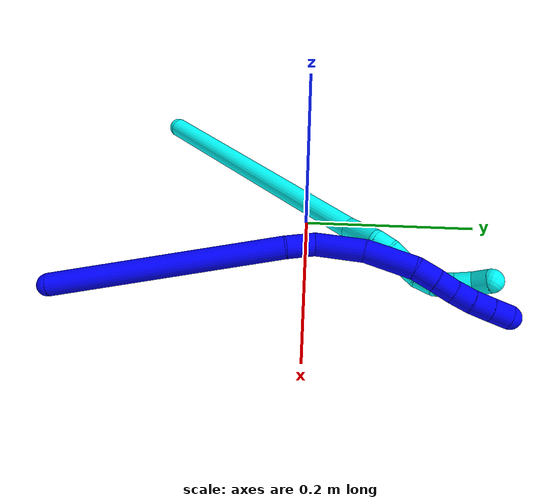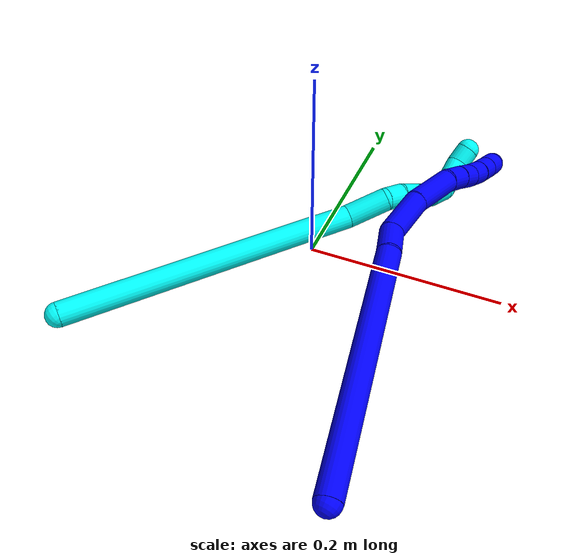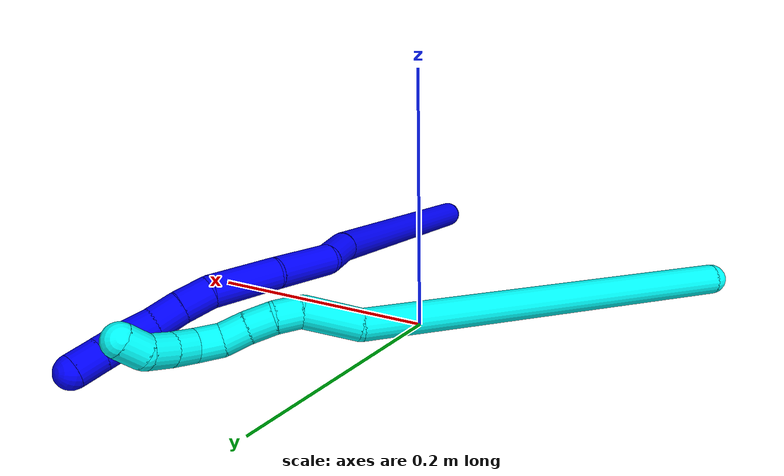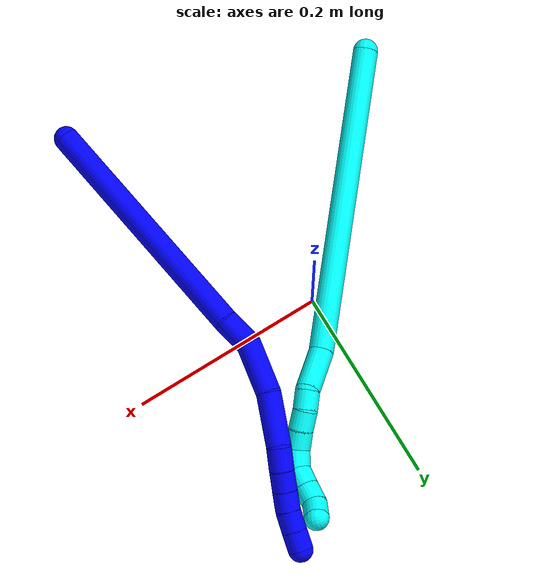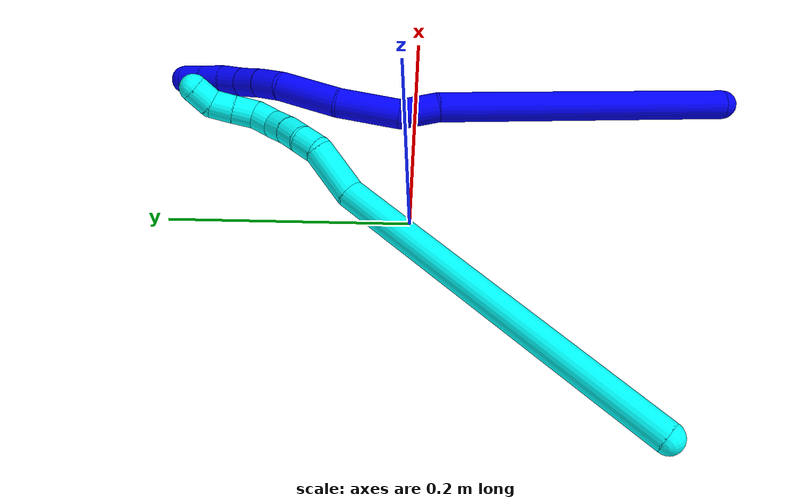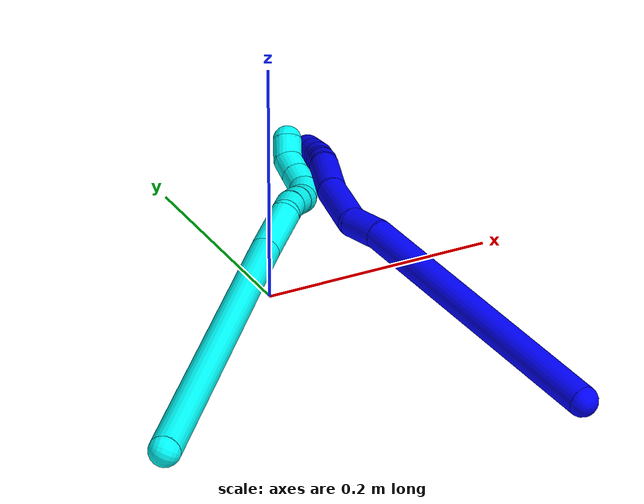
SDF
<sdf version="1.7">
 <world name="default">
  <model name="1">
   <static>0</static>
   <link name="1">
    <collision name="collision-cylinder-e_1_1_4">
     <pose>0.031625 0.015489 -0.1225 -3.01582 0.250737 -2.21485</pose>
     <geometry><cylinder><radius>0.0125</radius><length>0.254921</length></cylinder></geometry>
     <surface>
      <friction><ode><mu>1.16</mu><mu2>1.16</mu2><slip1>0</slip1><slip2>0</slip2></ode></friction>
      <contact><ode><kp>1e+06</kp><kd>1</kd><max_vel>0</max_vel><min_depth>0.001</min_depth></ode></contact>
     </surface>
    </collision>
    <visual name="visual-cylinder-e_1_1_4">
     <pose>0.031625 0.015489 -0.1225 -3.01582 0.250737 -2.21485</pose>
     <geometry><cylinder><radius>0.0125</radius><length>0.254921</length></cylinder></geometry>
     <material><ambient>0 0 1 1</ambient></material>
    </visual>
    <collision name="collision-cylinder-e_2_4_5">
     <pose>0.068498 0.035458 -0.259539 -2.84273 0.332111 -1.67785</pose>
     <geometry><cylinder><radius>0.0125</radius><length>0.032188</length></cylinder></geometry>
     <surface>
      <friction><ode><mu>1.16</mu><mu2>1.16</mu2><slip1>0</slip1><slip2>0</slip2></ode></friction>
      <contact><ode><kp>1e+06</kp><kd>1</kd><max_vel>0</max_vel><min_depth>0.001</min_depth></ode></contact>
     </surface>
    </collision>
    <visual name="visual-cylinder-e_2_4_5">
     <pose>0.068498 0.035458 -0.259539 -2.84273 0.332111 -1.67785</pose>
     <geometry><cylinder><radius>0.0125</radius><length>0.032188</length></cylinder></geometry>
     <material><ambient>0 0 1 1</ambient></material>
    </visual>
    <collision name="collision-cylinder-e_3_5_6">
     <pose>0.071934 0.045473 -0.300233 -2.93302 -0.067634 0.625237</pose>
     <geometry><cylinder><radius>0.0125</radius><length>0.053588</length></cylinder></geometry>
     <surface>
      <friction><ode><mu>1.16</mu><mu2>1.16</mu2><slip1>0</slip1><slip2>0</slip2></ode></friction>
      <contact><ode><kp>1e+06</kp><kd>1</kd><max_vel>0</max_vel><min_depth>0.001</min_depth></ode></contact>
     </surface>
    </collision>
    <visual name="visual-cylinder-e_3_5_6">
     <pose>0.071934 0.045473 -0.300233 -2.93302 -0.067634 0.625237</pose>
     <geometry><cylinder><radius>0.0125</radius><length>0.053588</length></cylinder></geometry>
     <material><ambient>0 0 1 1</ambient></material>
    </visual>
    <collision name="collision-cylinder-e_4_6_7">
     <pose>0.063132 0.058644 -0.351313 -2.84435 -0.262006 1.44331</pose>
     <geometry><cylinder><radius>0.0125</radius><length>0.053982</length></cylinder></geometry>
     <surface>
      <friction><ode><mu>1.16</mu><mu2>1.16</mu2><slip1>0</slip1><slip2>0</slip2></ode></friction>
      <contact><ode><kp>1e+06</kp><kd>1</kd><max_vel>0</max_vel><min_depth>0.001</min_depth></ode></contact>
     </surface>
    </collision>
    <visual name="visual-cylinder-e_4_6_7">
     <pose>0.063132 0.058644 -0.351313 -2.84435 -0.262006 1.44331</pose>
     <geometry><cylinder><radius>0.0125</radius><length>0.053982</length></cylinder></geometry>
     <material><ambient>0 0 1 1</ambient></material>
    </visual>
    <collision name="collision-cylinder-e_5_7_8">
     <pose>0.052528 0.072198 -0.385703 -2.58275 -0.313078 1.00579</pose>
     <geometry><cylinder><radius>0.0125</radius><length>0.023465</length></cylinder></geometry>
     <surface>
      <friction><ode><mu>1.16</mu><mu2>1.16</mu2><slip1>0</slip1><slip2>0</slip2></ode></friction>
      <contact><ode><kp>1e+06</kp><kd>1</kd><max_vel>0</max_vel><min_depth>0.001</min_depth></ode></contact>
     </surface>
    </collision>
    <visual name="visual-cylinder-e_5_7_8">
     <pose>0.052528 0.072198 -0.385703 -2.58275 -0.313078 1.00579</pose>
     <geometry><cylinder><radius>0.0125</radius><length>0.023465</length></cylinder></geometry>
     <material><ambient>0 0 1 1</ambient></material>
    </visual>
    <collision name="collision-cylinder-e_6_8_9">
     <pose>0.046006 0.084142 -0.403225 -2.49945 -0.281363 0.805122</pose>
     <geometry><cylinder><radius>0.0125</radius><length>0.020947</length></cylinder></geometry>
     <surface>
      <friction><ode><mu>1.16</mu><mu2>1.16</mu2><slip1>0</slip1><slip2>0</slip2></ode></friction>
      <contact><ode><kp>1e+06</kp><kd>1</kd><max_vel>0</max_vel><min_depth>0.001</min_depth></ode></contact>
     </surface>
    </collision>
    <visual name="visual-cylinder-e_6_8_9">
     <pose>0.046006 0.084142 -0.403225 -2.49945 -0.281363 0.805122</pose>
     <geometry><cylinder><radius>0.0125</radius><length>0.020947</length></cylinder></geometry>
     <material><ambient>0 0 1 1</ambient></material>
    </visual>
    <collision name="collision-cylinder-e_7_9_10">
     <pose>0.040333 0.095048 -0.4196 -2.61108 -0.279253 0.954852</pose>
     <geometry><cylinder><radius>0.0125</radius><length>0.020064</length></cylinder></geometry>
     <surface>
      <friction><ode><mu>1.16</mu><mu2>1.16</mu2><slip1>0</slip1><slip2>0</slip2></ode></friction>
      <contact><ode><kp>1e+06</kp><kd>1</kd><max_vel>0</max_vel><min_depth>0.001</min_depth></ode></contact>
     </surface>
    </collision>
    <visual name="visual-cylinder-e_7_9_10">
     <pose>0.040333 0.095048 -0.4196 -2.61108 -0.279253 0.954852</pose>
     <geometry><cylinder><radius>0.0125</radius><length>0.020064</length></cylinder></geometry>
     <material><ambient>0 0 1 1</ambient></material>
    </visual>
    <collision name="collision-cylinder-e_8_10_11">
     <pose>0.036125 0.105163 -0.436769 -2.60737 -0.139389 0.49954</pose>
     <geometry><cylinder><radius>0.0125</radius><length>0.02077</length></cylinder></geometry>
     <surface>
      <friction><ode><mu>1.16</mu><mu2>1.16</mu2><slip1>0</slip1><slip2>0</slip2></ode></friction>
      <contact><ode><kp>1e+06</kp><kd>1</kd><max_vel>0</max_vel><min_depth>0.001</min_depth></ode></contact>
     </surface>
    </collision>
    <visual name="visual-cylinder-e_8_10_11">
     <pose>0.036125 0.105163 -0.436769 -2.60737 -0.139389 0.49954</pose>
     <geometry><cylinder><radius>0.0125</radius><length>0.02077</length></cylinder></geometry>
     <material><ambient>0 0 1 1</ambient></material>
    </visual>
    <collision name="collision-cylinder-e_9_11_2">
     <pose>0.0335 0.115397 -0.454245 -2.61645 -0.118012 0.432704</pose>
     <geometry><cylinder><radius>0.0125</radius><length>0.020075</length></cylinder></geometry>
     <surface>
      <friction><ode><mu>1.16</mu><mu2>1.16</mu2><slip1>0</slip1><slip2>0</slip2></ode></friction>
      <contact><ode><kp>1e+06</kp><kd>1</kd><max_vel>0</max_vel><min_depth>0.001</min_depth></ode></contact>
     </surface>
    </collision>
    <visual name="visual-cylinder-e_9_11_2">
     <pose>0.0335 0.115397 -0.454245 -2.61645 -0.118012 0.432704</pose>
     <geometry><cylinder><radius>0.0125</radius><length>0.020075</length></cylinder></geometry>
     <material><ambient>0 0 1 1</ambient></material>
    </visual>
    <collision name="collision-sphere-2">
     <pose>0.032318 0.120394 -0.46287 0 -0 0</pose>
     <geometry><sphere><radius>0.0125</radius></sphere></geometry>
     <surface>
      <friction><ode><mu>1.16</mu><mu2>1.16</mu2><slip1>0</slip1><slip2>0</slip2></ode></friction>
      <contact><ode><kp>1e+06</kp><kd>1</kd><max_vel>0</max_vel><min_depth>0.001</min_depth></ode></contact>
     </surface>
    </collision>
    <visual name="visual-sphere-2">
     <pose>0.032318 0.120394 -0.46287 0 -0 0</pose>
     <geometry><sphere><radius>0.0125</radius></sphere></geometry>
     <material><ambient>0 0 1 1</ambient></material>
    </visual>
    <collision name="collision-sphere-11">
     <pose>0.034682 0.1104 -0.445621 0 -0 0</pose>
     <geometry><sphere><radius>0.0125</radius></sphere></geometry>
     <surface>
      <friction><ode><mu>1.16</mu><mu2>1.16</mu2><slip1>0</slip1><slip2>0</slip2></ode></friction>
      <contact><ode><kp>1e+06</kp><kd>1</kd><max_vel>0</max_vel><min_depth>0.001</min_depth></ode></contact>
     </surface>
    </collision>
    <visual name="visual-sphere-11">
     <pose>0.034682 0.1104 -0.445621 0 -0 0</pose>
     <geometry><sphere><radius>0.0125</radius></sphere></geometry>
     <material><ambient>0 0 1 1</ambient></material>
    </visual>
    <collision name="collision-sphere-10">
     <pose>0.037568 0.099927 -0.427918 0 -0 0</pose>
     <geometry><sphere><radius>0.0125</radius></sphere></geometry>
     <surface>
      <friction><ode><mu>1.16</mu><mu2>1.16</mu2><slip1>0</slip1><slip2>0</slip2></ode></friction>
      <contact><ode><kp>1e+06</kp><kd>1</kd><max_vel>0</max_vel><min_depth>0.001</min_depth></ode></contact>
     </surface>
    </collision>
    <visual name="visual-sphere-10">
     <pose>0.037568 0.099927 -0.427918 0 -0 0</pose>
     <geometry><sphere><radius>0.0125</radius></sphere></geometry>
     <material><ambient>0 0 1 1</ambient></material>
    </visual>
    <collision name="collision-sphere-9">
     <pose>0.043098 0.090168 -0.411283 0 -0 0</pose>
     <geometry><sphere><radius>0.0125</radius></sphere></geometry>
     <surface>
      <friction><ode><mu>1.16</mu><mu2>1.16</mu2><slip1>0</slip1><slip2>0</slip2></ode></friction>
      <contact><ode><kp>1e+06</kp><kd>1</kd><max_vel>0</max_vel><min_depth>0.001</min_depth></ode></contact>
     </surface>
    </collision>
    <visual name="visual-sphere-9">
     <pose>0.043098 0.090168 -0.411283 0 -0 0</pose>
     <geometry><sphere><radius>0.0125</radius></sphere></geometry>
     <material><ambient>0 0 1 1</ambient></material>
    </visual>
    <collision name="collision-sphere-4">
     <pose>0.063251 0.030979 -0.244999 0 -0 0</pose>
     <geometry><sphere><radius>0.0125</radius></sphere></geometry>
     <surface>
      <friction><ode><mu>1.16</mu><mu2>1.16</mu2><slip1>0</slip1><slip2>0</slip2></ode></friction>
      <contact><ode><kp>1e+06</kp><kd>1</kd><max_vel>0</max_vel><min_depth>0.001</min_depth></ode></contact>
     </surface>
    </collision>
    <visual name="visual-sphere-4">
     <pose>0.063251 0.030979 -0.244999 0 -0 0</pose>
     <geometry><sphere><radius>0.0125</radius></sphere></geometry>
     <material><ambient>0 0 1 1</ambient></material>
    </visual>
    <collision name="collision-sphere-1">
     <geometry><sphere><radius>0.0125</radius></sphere></geometry>
     <surface>
      <friction><ode><mu>1.16</mu><mu2>1.16</mu2><slip1>0</slip1><slip2>0</slip2></ode></friction>
      <contact><ode><kp>1e+06</kp><kd>1</kd><max_vel>0</max_vel><min_depth>0.001</min_depth></ode></contact>
     </surface>
    </collision>
    <visual name="visual-sphere-1">
     <geometry><sphere><radius>0.0125</radius></sphere></geometry>
     <material><ambient>0 0 1 1</ambient></material>
    </visual>
    <collision name="collision-sphere-8">
     <pose>0.048914 0.078116 -0.395167 0 -0 0</pose>
     <geometry><sphere><radius>0.0125</radius></sphere></geometry>
     <surface>
      <friction><ode><mu>1.16</mu><mu2>1.16</mu2><slip1>0</slip1><slip2>0</slip2></ode></friction>
      <contact><ode><kp>1e+06</kp><kd>1</kd><max_vel>0</max_vel><min_depth>0.001</min_depth></ode></contact>
     </surface>
    </collision>
    <visual name="visual-sphere-8">
     <pose>0.048914 0.078116 -0.395167 0 -0 0</pose>
     <geometry><sphere><radius>0.0125</radius></sphere></geometry>
     <material><ambient>0 0 1 1</ambient></material>
    </visual>
    <collision name="collision-sphere-5">
     <pose>0.073745 0.039938 -0.274079 0 -0 0</pose>
     <geometry><sphere><radius>0.0125</radius></sphere></geometry>
     <surface>
      <friction><ode><mu>1.16</mu><mu2>1.16</mu2><slip1>0</slip1><slip2>0</slip2></ode></friction>
      <contact><ode><kp>1e+06</kp><kd>1</kd><max_vel>0</max_vel><min_depth>0.001</min_depth></ode></contact>
     </surface>
    </collision>
    <visual name="visual-sphere-5">
     <pose>0.073745 0.039938 -0.274079 0 -0 0</pose>
     <geometry><sphere><radius>0.0125</radius></sphere></geometry>
     <material><ambient>0 0 1 1</ambient></material>
    </visual>
    <collision name="collision-sphere-6">
     <pose>0.070123 0.051009 -0.326386 0 -0 0</pose>
     <geometry><sphere><radius>0.0125</radius></sphere></geometry>
     <surface>
      <friction><ode><mu>1.16</mu><mu2>1.16</mu2><slip1>0</slip1><slip2>0</slip2></ode></friction>
      <contact><ode><kp>1e+06</kp><kd>1</kd><max_vel>0</max_vel><min_depth>0.001</min_depth></ode></contact>
     </surface>
    </collision>
    <visual name="visual-sphere-6">
     <pose>0.070123 0.051009 -0.326386 0 -0 0</pose>
     <geometry><sphere><radius>0.0125</radius></sphere></geometry>
     <material><ambient>0 0 1 1</ambient></material>
    </visual>
    <collision name="collision-sphere-7">
     <pose>0.056141 0.06628 -0.376239 0 -0 0</pose>
     <geometry><sphere><radius>0.0125</radius></sphere></geometry>
     <surface>
      <friction><ode><mu>1.16</mu><mu2>1.16</mu2><slip1>0</slip1><slip2>0</slip2></ode></friction>
      <contact><ode><kp>1e+06</kp><kd>1</kd><max_vel>0</max_vel><min_depth>0.001</min_depth></ode></contact>
     </surface>
    </collision>
    <visual name="visual-sphere-7">
     <pose>0.056141 0.06628 -0.376239 0 -0 0</pose>
     <geometry><sphere><radius>0.0125</radius></sphere></geometry>
     <material><ambient>0 0 1 1</ambient></material>
    </visual>
    <inertial>
     <pose>0.043916 0.041114 -0.237483 0 -0 0</pose>
     <mass>0.5</mass>
     <inertia>
      <ixx>-0.00184</ixx>
      <ixy>0</ixy>
      <ixz>0</ixz>
      <iyy>-0.000196</iyy>
      <iyz>0</iyz>
      <izz>-0.000557</izz>
     </inertia>
    </inertial>
   </link>
   <pose>0.1244 -0.271326 0.012033 -1.82281 -0.02958 3.03679</pose>
  </model>
  <model name="3">
   <static>0</static>
   <link name="3">
    <collision name="collision-cylinder-e_1_1_4">
     <pose>0.140608 0.062931 0.030654 -1.11752 1.10888 -0.738775</pose>
     <geometry><cylinder><radius>0.0125</radius><length>0.314137</length></cylinder></geometry>
     <surface>
      <friction><ode><mu>1.16</mu><mu2>1.16</mu2><slip1>0</slip1><slip2>0</slip2></ode></friction>
      <contact><ode><kp>1e+06</kp><kd>1</kd><max_vel>0</max_vel><min_depth>0.001</min_depth></ode></contact>
     </surface>
    </collision>
    <visual name="visual-cylinder-e_1_1_4">
     <pose>0.140608 0.062931 0.030654 -1.11752 1.10888 -0.738775</pose>
     <geometry><cylinder><radius>0.0125</radius><length>0.314137</length></cylinder></geometry>
     <material><ambient>0.003922 1 0.996078 1</ambient></material>
    </visual>
    <collision name="collision-cylinder-e_2_4_5">
     <pose>0.297184 0.141521 0.065842 -1.2889 0.77511 -0.595285</pose>
     <geometry><cylinder><radius>0.0125</radius><length>0.04564</length></cylinder></geometry>
     <surface>
      <friction><ode><mu>1.16</mu><mu2>1.16</mu2><slip1>0</slip1><slip2>0</slip2></ode></friction>
      <contact><ode><kp>1e+06</kp><kd>1</kd><max_vel>0</max_vel><min_depth>0.001</min_depth></ode></contact>
     </surface>
    </collision>
    <visual name="visual-cylinder-e_2_4_5">
     <pose>0.297184 0.141521 0.065842 -1.2889 0.77511 -0.595285</pose>
     <geometry><cylinder><radius>0.0125</radius><length>0.04564</length></cylinder></geometry>
     <material><ambient>0.003922 1 0.996078 1</ambient></material>
    </visual>
    <collision name="collision-cylinder-e_3_5_6">
     <pose>0.322481 0.160302 0.072556 -0.96173 1.18314 -0.674244</pose>
     <geometry><cylinder><radius>0.0125</radius><length>0.02015</length></cylinder></geometry>
     <surface>
      <friction><ode><mu>1.16</mu><mu2>1.16</mu2><slip1>0</slip1><slip2>0</slip2></ode></friction>
      <contact><ode><kp>1e+06</kp><kd>1</kd><max_vel>0</max_vel><min_depth>0.001</min_depth></ode></contact>
     </surface>
    </collision>
    <visual name="visual-cylinder-e_3_5_6">
     <pose>0.322481 0.160302 0.072556 -0.96173 1.18314 -0.674244</pose>
     <geometry><cylinder><radius>0.0125</radius><length>0.02015</length></cylinder></geometry>
     <material><ambient>0.003922 1 0.996078 1</ambient></material>
    </visual>
    <collision name="collision-cylinder-e_4_6_7">
     <pose>0.340935 0.165068 0.078543 -0.407027 1.14429 -0.264255</pose>
     <geometry><cylinder><radius>0.0125</radius><length>0.020049</length></cylinder></geometry>
     <surface>
      <friction><ode><mu>1.16</mu><mu2>1.16</mu2><slip1>0</slip1><slip2>0</slip2></ode></friction>
      <contact><ode><kp>1e+06</kp><kd>1</kd><max_vel>0</max_vel><min_depth>0.001</min_depth></ode></contact>
     </surface>
    </collision>
    <visual name="visual-cylinder-e_4_6_7">
     <pose>0.340935 0.165068 0.078543 -0.407027 1.14429 -0.264255</pose>
     <geometry><cylinder><radius>0.0125</radius><length>0.020049</length></cylinder></geometry>
     <material><ambient>0.003922 1 0.996078 1</ambient></material>
    </visual>
    <collision name="collision-cylinder-e_5_7_8">
     <pose>0.359439 0.167441 0.085772 -0.210659 1.21372 -0.146531</pose>
     <geometry><cylinder><radius>0.0125</radius><length>0.020017</length></cylinder></geometry>
     <surface>
      <friction><ode><mu>1.16</mu><mu2>1.16</mu2><slip1>0</slip1><slip2>0</slip2></ode></friction>
      <contact><ode><kp>1e+06</kp><kd>1</kd><max_vel>0</max_vel><min_depth>0.001</min_depth></ode></contact>
     </surface>
    </collision>
    <visual name="visual-cylinder-e_5_7_8">
     <pose>0.359439 0.167441 0.085772 -0.210659 1.21372 -0.146531</pose>
     <geometry><cylinder><radius>0.0125</radius><length>0.020017</length></cylinder></geometry>
     <material><ambient>0.003922 1 0.996078 1</ambient></material>
    </visual>
    <collision name="collision-cylinder-e_6_8_9">
     <pose>0.378236 0.171466 0.089876 -1.36638 1.22789 -1.04168</pose>
     <geometry><cylinder><radius>0.0125</radius><length>0.020005</length></cylinder></geometry>
     <surface>
      <friction><ode><mu>1.16</mu><mu2>1.16</mu2><slip1>0</slip1><slip2>0</slip2></ode></friction>
      <contact><ode><kp>1e+06</kp><kd>1</kd><max_vel>0</max_vel><min_depth>0.001</min_depth></ode></contact>
     </surface>
    </collision>
    <visual name="visual-cylinder-e_6_8_9">
     <pose>0.378236 0.171466 0.089876 -1.36638 1.22789 -1.04168</pose>
     <geometry><cylinder><radius>0.0125</radius><length>0.020005</length></cylinder></geometry>
     <material><ambient>0.003922 1 0.996078 1</ambient></material>
    </visual>
    <collision name="collision-cylinder-e_7_9_10">
     <pose>0.396299 0.177909 0.086635 -2.4651 1.04357 -2.04345</pose>
     <geometry><cylinder><radius>0.0125</radius><length>0.020002</length></cylinder></geometry>
     <surface>
      <friction><ode><mu>1.16</mu><mu2>1.16</mu2><slip1>0</slip1><slip2>0</slip2></ode></friction>
      <contact><ode><kp>1e+06</kp><kd>1</kd><max_vel>0</max_vel><min_depth>0.001</min_depth></ode></contact>
     </surface>
    </collision>
    <visual name="visual-cylinder-e_7_9_10">
     <pose>0.396299 0.177909 0.086635 -2.4651 1.04357 -2.04345</pose>
     <geometry><cylinder><radius>0.0125</radius><length>0.020002</length></cylinder></geometry>
     <material><ambient>0.003922 1 0.996078 1</ambient></material>
    </visual>
    <collision name="collision-cylinder-e_8_10_11">
     <pose>0.4132 0.184667 0.078376 -2.44742 0.971585 -1.94028</pose>
     <geometry><cylinder><radius>0.0125</radius><length>0.02</length></cylinder></geometry>
     <surface>
      <friction><ode><mu>1.16</mu><mu2>1.16</mu2><slip1>0</slip1><slip2>0</slip2></ode></friction>
      <contact><ode><kp>1e+06</kp><kd>1</kd><max_vel>0</max_vel><min_depth>0.001</min_depth></ode></contact>
     </surface>
    </collision>
    <visual name="visual-cylinder-e_8_10_11">
     <pose>0.4132 0.184667 0.078376 -2.44742 0.971585 -1.94028</pose>
     <geometry><cylinder><radius>0.0125</radius><length>0.02</length></cylinder></geometry>
     <material><ambient>0.003922 1 0.996078 1</ambient></material>
    </visual>
    <collision name="collision-cylinder-e_9_11_2">
     <pose>0.427156 0.19595 0.071104 -1.93631 0.606362 -0.853466</pose>
     <geometry><cylinder><radius>0.0125</radius><length>0.02</length></cylinder></geometry>
     <surface>
      <friction><ode><mu>1.16</mu><mu2>1.16</mu2><slip1>0</slip1><slip2>0</slip2></ode></friction>
      <contact><ode><kp>1e+06</kp><kd>1</kd><max_vel>0</max_vel><min_depth>0.001</min_depth></ode></contact>
     </surface>
    </collision>
    <visual name="visual-cylinder-e_9_11_2">
     <pose>0.427156 0.19595 0.071104 -1.93631 0.606362 -0.853466</pose>
     <geometry><cylinder><radius>0.0125</radius><length>0.02</length></cylinder></geometry>
     <material><ambient>0.003922 1 0.996078 1</ambient></material>
    </visual>
    <collision name="collision-sphere-2">
     <pose>0.432855 0.203624 0.068167 0 -0 0</pose>
     <geometry><sphere><radius>0.0125</radius></sphere></geometry>
     <surface>
      <friction><ode><mu>1.16</mu><mu2>1.16</mu2><slip1>0</slip1><slip2>0</slip2></ode></friction>
      <contact><ode><kp>1e+06</kp><kd>1</kd><max_vel>0</max_vel><min_depth>0.001</min_depth></ode></contact>
     </surface>
    </collision>
    <visual name="visual-sphere-2">
     <pose>0.432855 0.203624 0.068167 0 -0 0</pose>
     <geometry><sphere><radius>0.0125</radius></sphere></geometry>
     <material><ambient>0.003922 1 0.996078 1</ambient></material>
    </visual>
    <collision name="collision-sphere-11">
     <pose>0.421458 0.188275 0.074042 0 -0 0</pose>
     <geometry><sphere><radius>0.0125</radius></sphere></geometry>
     <surface>
      <friction><ode><mu>1.16</mu><mu2>1.16</mu2><slip1>0</slip1><slip2>0</slip2></ode></friction>
      <contact><ode><kp>1e+06</kp><kd>1</kd><max_vel>0</max_vel><min_depth>0.001</min_depth></ode></contact>
     </surface>
    </collision>
    <visual name="visual-sphere-11">
     <pose>0.421458 0.188275 0.074042 0 -0 0</pose>
     <geometry><sphere><radius>0.0125</radius></sphere></geometry>
     <material><ambient>0.003922 1 0.996078 1</ambient></material>
    </visual>
    <collision name="collision-sphere-10">
     <pose>0.404942 0.181059 0.082711 0 -0 0</pose>
     <geometry><sphere><radius>0.0125</radius></sphere></geometry>
     <surface>
      <friction><ode><mu>1.16</mu><mu2>1.16</mu2><slip1>0</slip1><slip2>0</slip2></ode></friction>
      <contact><ode><kp>1e+06</kp><kd>1</kd><max_vel>0</max_vel><min_depth>0.001</min_depth></ode></contact>
     </surface>
    </collision>
    <visual name="visual-sphere-10">
     <pose>0.404942 0.181059 0.082711 0 -0 0</pose>
     <geometry><sphere><radius>0.0125</radius></sphere></geometry>
     <material><ambient>0.003922 1 0.996078 1</ambient></material>
    </visual>
    <collision name="collision-sphere-9">
     <pose>0.387656 0.174759 0.090559 0 -0 0</pose>
     <geometry><sphere><radius>0.0125</radius></sphere></geometry>
     <surface>
      <friction><ode><mu>1.16</mu><mu2>1.16</mu2><slip1>0</slip1><slip2>0</slip2></ode></friction>
      <contact><ode><kp>1e+06</kp><kd>1</kd><max_vel>0</max_vel><min_depth>0.001</min_depth></ode></contact>
     </surface>
    </collision>
    <visual name="visual-sphere-9">
     <pose>0.387656 0.174759 0.090559 0 -0 0</pose>
     <geometry><sphere><radius>0.0125</radius></sphere></geometry>
     <material><ambient>0.003922 1 0.996078 1</ambient></material>
    </visual>
    <collision name="collision-sphere-4">
     <pose>0.281215 0.125863 0.061307 0 -0 0</pose>
     <geometry><sphere><radius>0.0125</radius></sphere></geometry>
     <surface>
      <friction><ode><mu>1.16</mu><mu2>1.16</mu2><slip1>0</slip1><slip2>0</slip2></ode></friction>
      <contact><ode><kp>1e+06</kp><kd>1</kd><max_vel>0</max_vel><min_depth>0.001</min_depth></ode></contact>
     </surface>
    </collision>
    <visual name="visual-sphere-4">
     <pose>0.281215 0.125863 0.061307 0 -0 0</pose>
     <geometry><sphere><radius>0.0125</radius></sphere></geometry>
     <material><ambient>0.003922 1 0.996078 1</ambient></material>
    </visual>
    <collision name="collision-sphere-1">
     <geometry><sphere><radius>0.0125</radius></sphere></geometry>
     <surface>
      <friction><ode><mu>1.16</mu><mu2>1.16</mu2><slip1>0</slip1><slip2>0</slip2></ode></friction>
      <contact><ode><kp>1e+06</kp><kd>1</kd><max_vel>0</max_vel><min_depth>0.001</min_depth></ode></contact>
     </surface>
    </collision>
    <visual name="visual-sphere-1">
     <geometry><sphere><radius>0.0125</radius></sphere></geometry>
     <material><ambient>0.003922 1 0.996078 1</ambient></material>
    </visual>
    <collision name="collision-sphere-8">
     <pose>0.368816 0.168173 0.089193 0 -0 0</pose>
     <geometry><sphere><radius>0.0125</radius></sphere></geometry>
     <surface>
      <friction><ode><mu>1.16</mu><mu2>1.16</mu2><slip1>0</slip1><slip2>0</slip2></ode></friction>
      <contact><ode><kp>1e+06</kp><kd>1</kd><max_vel>0</max_vel><min_depth>0.001</min_depth></ode></contact>
     </surface>
    </collision>
    <visual name="visual-sphere-8">
     <pose>0.368816 0.168173 0.089193 0 -0 0</pose>
     <geometry><sphere><radius>0.0125</radius></sphere></geometry>
     <material><ambient>0.003922 1 0.996078 1</ambient></material>
    </visual>
    <collision name="collision-sphere-5">
     <pose>0.313154 0.157179 0.070377 0 -0 0</pose>
     <geometry><sphere><radius>0.0125</radius></sphere></geometry>
     <surface>
      <friction><ode><mu>1.16</mu><mu2>1.16</mu2><slip1>0</slip1><slip2>0</slip2></ode></friction>
      <contact><ode><kp>1e+06</kp><kd>1</kd><max_vel>0</max_vel><min_depth>0.001</min_depth></ode></contact>
     </surface>
    </collision>
    <visual name="visual-sphere-5">
     <pose>0.313154 0.157179 0.070377 0 -0 0</pose>
     <geometry><sphere><radius>0.0125</radius></sphere></geometry>
     <material><ambient>0.003922 1 0.996078 1</ambient></material>
    </visual>
    <collision name="collision-sphere-6">
     <pose>0.331809 0.163426 0.074735 0 -0 0</pose>
     <geometry><sphere><radius>0.0125</radius></sphere></geometry>
     <surface>
      <friction><ode><mu>1.16</mu><mu2>1.16</mu2><slip1>0</slip1><slip2>0</slip2></ode></friction>
      <contact><ode><kp>1e+06</kp><kd>1</kd><max_vel>0</max_vel><min_depth>0.001</min_depth></ode></contact>
     </surface>
    </collision>
    <visual name="visual-sphere-6">
     <pose>0.331809 0.163426 0.074735 0 -0 0</pose>
     <geometry><sphere><radius>0.0125</radius></sphere></geometry>
     <material><ambient>0.003922 1 0.996078 1</ambient></material>
    </visual>
    <collision name="collision-sphere-7">
     <pose>0.350062 0.16671 0.082351 0 -0 0</pose>
     <geometry><sphere><radius>0.0125</radius></sphere></geometry>
     <surface>
      <friction><ode><mu>1.16</mu><mu2>1.16</mu2><slip1>0</slip1><slip2>0</slip2></ode></friction>
      <contact><ode><kp>1e+06</kp><kd>1</kd><max_vel>0</max_vel><min_depth>0.001</min_depth></ode></contact>
     </surface>
    </collision>
    <visual name="visual-sphere-7">
     <pose>0.350062 0.16671 0.082351 0 -0 0</pose>
     <geometry><sphere><radius>0.0125</radius></sphere></geometry>
     <material><ambient>0.003922 1 0.996078 1</ambient></material>
    </visual>
    <inertial>
     <pose>0.221125 0.101441 0.047817 0 -0 0</pose>
     <mass>0.5</mass>
     <inertia>
      <ixx>0.000111</ixx>
      <ixy>0</ixy>
      <ixz>0</ixz>
      <iyy>0.001491</iyy>
      <iyz>0</iyz>
      <izz>-0.003384</izz>
     </inertia>
    </inertial>
   </link>
   <pose>-0.181594 -0.19022 0.011785 2.03677 0.288435 1.23317</pose>
  </model>
 </world>
</sdf>
